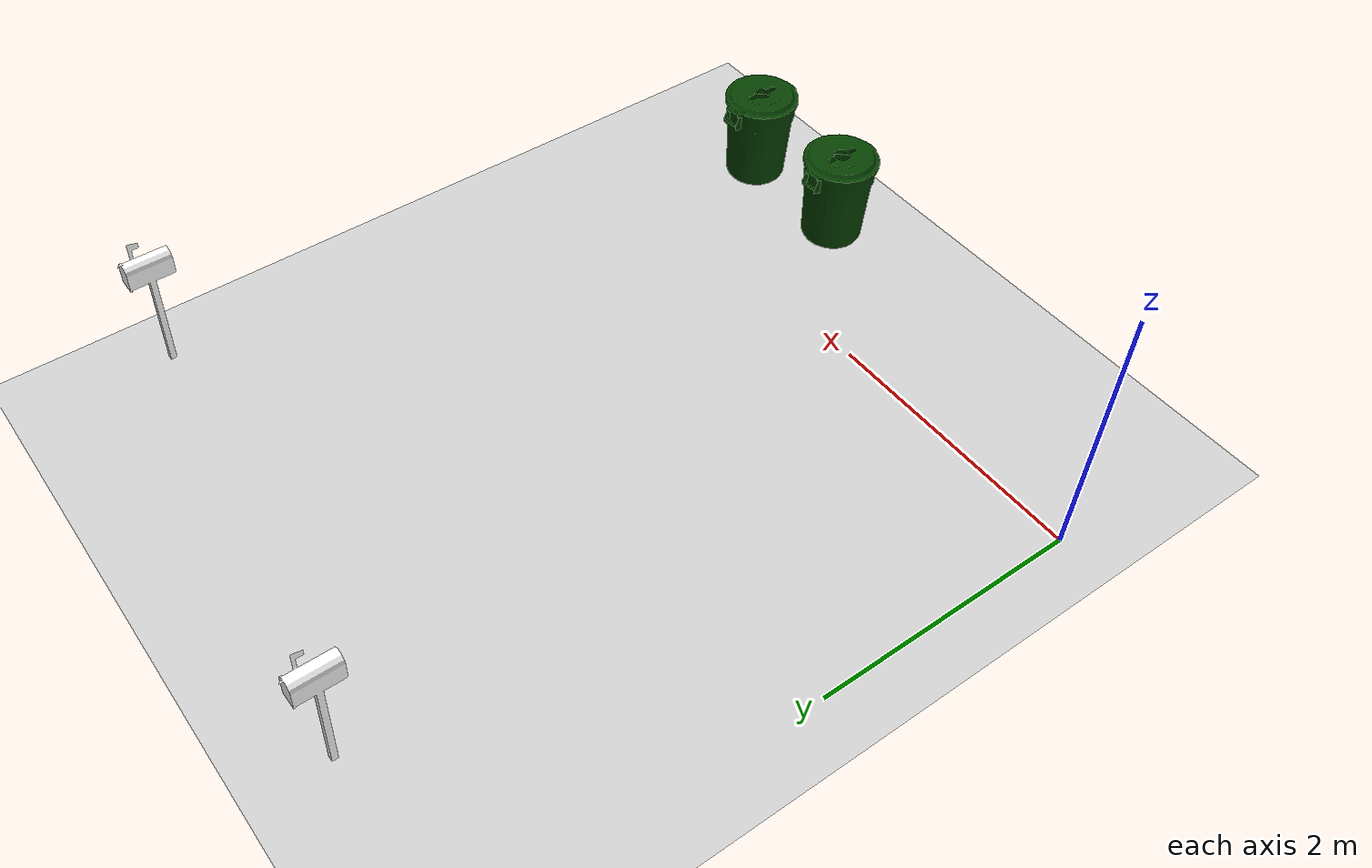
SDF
<sdf version="1.7">
 <world name="default">
  <light name="sun" type="directional">
   <pose>0 0 10 0 -0 0</pose>
   <diffuse>0.8 0.8 0.8 1</diffuse>
   <specular>0.2 0.2 0.2 1</specular>
   <attenuation>
    <range>1000</range>
    <constant>0.9</constant>
    <linear>0.01</linear>
    <quadratic>0.001</quadratic>
   </attenuation>
   <direction>-0.5 0.1 -0.9</direction>
   <spot><inner_angle>0</inner_angle><outer_angle>0</outer_angle><falloff>0</falloff></spot>
  </light>
  <model name="ground_plane">
   <static>1</static>
   <link name="link">
    <collision name="collision">
     <geometry><plane><normal>0 0 1</normal><size>100 100</size></plane></geometry>
     <surface><friction><ode><mu>100</mu><mu2>50</mu2></ode></friction></surface>
    </collision>
    <visual name="visual">
     <cast_shadows>0</cast_shadows>
     <geometry><plane><normal>0 0 1</normal><size>100 100</size></plane></geometry>
     <material>
      <script><uri>file://media/materials/scripts/gazebo.material</uri><name>Gazebo/Grey</name></script>
     </material>
    </visual>
   </link>
  </model>
  <gravity>0 0 -9.8</gravity>
  <magnetic_field>6e-06 2.3e-05 -4.2e-05</magnetic_field>
  <atmosphere type="adiabatic"/>
  <physics type="ode">
   <max_step_size>0.001</max_step_size>
   <real_time_factor>1</real_time_factor>
   <real_time_update_rate>1000</real_time_update_rate>
  </physics>
  <scene><ambient>0.4 0.4 0.4 1</ambient><background>0.7 0.7 0.7 1</background><shadows>1</shadows></scene>
  <audio><device>default</device></audio>
  <spherical_coordinates>
   <surface_model>EARTH_WGS84</surface_model>
   <latitude_deg>0</latitude_deg>
   <longitude_deg>0</longitude_deg>
   <elevation>0</elevation>
   <heading_deg>0</heading_deg>
  </spherical_coordinates>
  <model name="Mailbox">
   <link name="link">
    <collision name="collision">
     <geometry><mesh><uri>model://mailbox/meshes/mailbox.dae</uri></mesh></geometry>
    </collision>
    <visual name="visual">
     <geometry><mesh><uri>model://mailbox/meshes/mailbox.dae</uri></mesh></geometry>
     <material>
      <script>
       <uri>model://mailbox/materials/scripts</uri>
       <uri>model://mailbox/materials/textures</uri>
       <name>Mailbox/Diffuse</name>
      </script>
     </material>
    </visual>
    <inertial>
     <inertia><ixx>1</ixx><ixy>0</ixy><ixz>0</ixz><iyy>1</iyy><iyz>0</iyz><izz>1</izz></inertia>
     <mass>1</mass>
    </inertial>
   </link>
   <pose>1.32907 4.55776 -1e-05 4e-06 -4e-06 0</pose>
  </model>
  <model name="Mailbox_0">
   <link name="link">
    <collision name="collision">
     <geometry><mesh><uri>model://mailbox/meshes/mailbox.dae</uri></mesh></geometry>
    </collision>
    <visual name="visual">
     <geometry><mesh><uri>model://mailbox/meshes/mailbox.dae</uri></mesh></geometry>
     <material>
      <script>
       <uri>model://mailbox/materials/scripts</uri>
       <uri>model://mailbox/materials/textures</uri>
       <name>Mailbox/Diffuse</name>
      </script>
     </material>
    </visual>
    <inertial>
     <inertia><ixx>1</ixx><ixy>0</ixy><ixz>0</ixz><iyy>1</iyy><iyz>0</iyz><izz>1</izz></inertia>
     <mass>1</mass>
    </inertial>
   </link>
   <pose>4.7682 3.95964 0 -9e-06 -2e-06 0</pose>
  </model>
  <model name="first_2015_trash_can">
   <link name="link">
    <inertial>
     <pose>0 0 0.3683 0 -0 0</pose>
     <mass>4.83076</mass>
     <inertia>
      <ixx>0.281534</ixx>
      <ixy>0</ixy>
      <ixz>0</ixz>
      <iyy>0.281534</iyy>
      <iyz>0</iyz>
      <izz>0.126223</izz>
     </inertia>
    </inertial>
    <visual name="visual">
     <geometry><mesh><uri>model://first_2015_trash_can/meshes/trash_can.dae</uri></mesh></geometry>
    </visual>
    <collision name="collision">
     <geometry><mesh><uri>model://first_2015_trash_can/meshes/trash_can.dae</uri></mesh></geometry>
    </collision>
   </link>
   <pose>3.09241 -0.778912 -2e-06 5e-06 1e-05 -0.000102</pose>
  </model>
  <model name="first_2015_trash_can_0">
   <link name="link">
    <inertial>
     <pose>0 0 0.3683 0 -0 0</pose>
     <mass>4.83076</mass>
     <inertia>
      <ixx>0.281534</ixx>
      <ixy>0</ixy>
      <ixz>0</ixz>
      <iyy>0.281534</iyy>
      <iyz>0</iyz>
      <izz>0.126223</izz>
     </inertia>
    </inertial>
    <visual name="visual">
     <geometry><mesh><uri>model://first_2015_trash_can/meshes/trash_can.dae</uri></mesh></geometry>
    </visual>
    <collision name="collision">
     <geometry><mesh><uri>model://first_2015_trash_can/meshes/trash_can.dae</uri></mesh></geometry>
    </collision>
   </link>
   <pose>4.00619 -0.775358 1e-06 -1.8e-05 -1e-06 -2.1e-05</pose>
  </model>
 </world>
</sdf>
